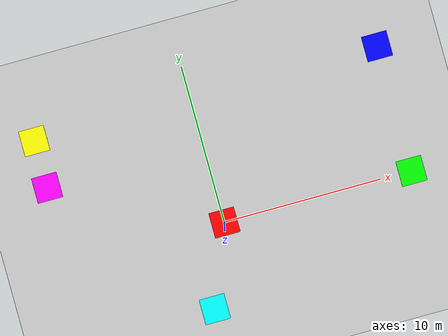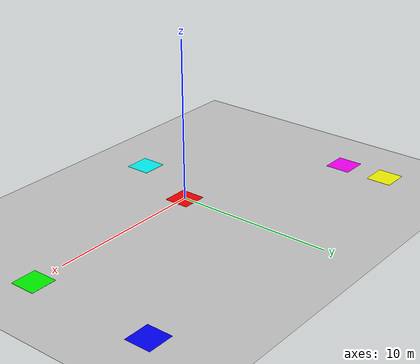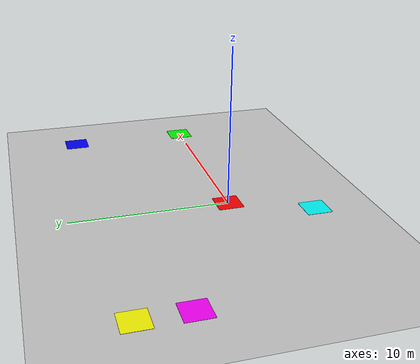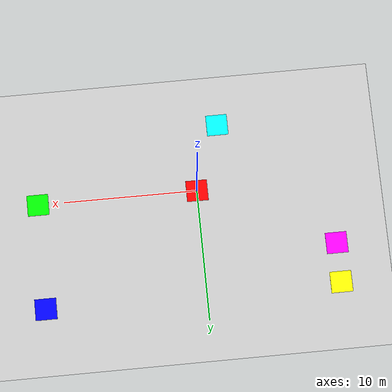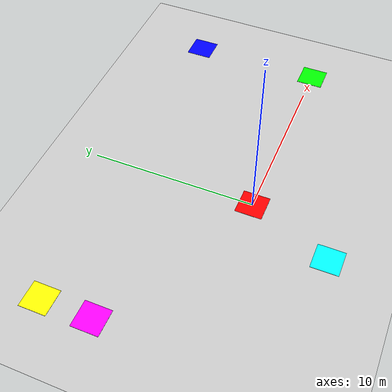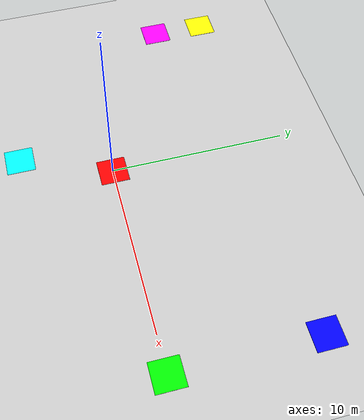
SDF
<sdf version='1.7'>
    <world name='default'>
        <plugin name='gz::sim::systems::Physics' filename='gz-sim-physics-system'/>
        <plugin name='gz::sim::systems::UserCommands' filename='gz-sim-user-commands-system'/>
        <plugin name='gz::sim::systems::SceneBroadcaster' filename='gz-sim-scene-broadcaster-system'/>

        <physics name='default_physics' type='ode'>
            <max_step_size>0.001</max_step_size>
            <real_time_factor>1</real_time_factor>
        </physics>

        <!-- Gravità -->
        <gravity>0 0 -9.8</gravity>
            <magnetic_field>6e-06 2.3e-05 -4.2e-05</magnetic_field>
        <atmosphere type='adiabatic'/>

        <light name='sun' type='directional'>
            <cast_shadows>1</cast_shadows>
            <pose>0 0 10 0 0 0</pose>
            <diffuse>0.8 0.8 0.8 1</diffuse>
            <specular>0.8 0.8 0.8 1</specular>
            <attenuation>
                <range>1000</range>
                <constant>0.9</constant>
                <linear>0.01</linear>
                <quadratic>0.001</quadratic>
            </attenuation>
            <direction>-0.5 0.1 -0.9</direction>
        </light>

        <model name='ground_plane'>
            <static>1</static>
            <link name='link'>
                <collision name='collision'>
                    <geometry>
                        <plane>
                            <normal>0 0 1</normal>
                            <size>100 100</size>
                        </plane>
                    </geometry>
                    <surface>
                        <friction>
                            <ode>
                                <mu>1.0</mu>
                                <mu2>1.0</mu2>
                            </ode>
                        </friction>
                    </surface>
                </collision>
                <visual name='visual'>
                    <geometry>
                        <plane>
                            <normal>0 0 1</normal>
                            <size>100 100</size>
                        </plane>
                    </geometry>
                    <material>
                        <ambient>0.8 0.8 0.8 1</ambient>
                        <diffuse>0.8 0.8 0.8 1</diffuse>
                        <specular>0.8 0.8 0.8 1</specular>
                    </material>
                </visual>
            </link>
        </model>

        <model name="station_a">
            <static>true</static>
            <link name="link">
                <pose>0.0 0.0 0.005 0 0 0</pose>
                <visual name="visual">
                <geometry>
                    <box>
                    <size>1.6 1.6 0.01</size>
                    </box>
                </geometry>
                <material>
                    <ambient>1 0 0 1</ambient>
                    <diffuse>1 0 0 1</diffuse>
                </material>
                </visual>
            </link>
        </model>

        <model name="station_b">
            <static>true</static>
            <link name="link">
                <pose>12.0 0.0 0.005 0 0 0</pose>
                <visual name="visual">
                <geometry>
                    <box>
                    <size>1.6 1.6 0.01</size>
                    </box>
                </geometry>
                <material>
                    <ambient>0 1 0 1</ambient>
                    <diffuse>0 1 0 1</diffuse>
                </material>
                </visual>
            </link>
        </model>

            <!-- Cerchio C -->
        <model name="station_c">
            <static>true</static>
            <link name="link">
                <pose>12.0 8.0 0.005 0 0 0</pose>
                <visual name="visual">
                <geometry>
                    <box>
                    <size>1.6 1.6 0.01</size>
                    </box>
                </geometry>
                <material>
                    <ambient>0 0 1 1</ambient>
                    <diffuse>0 0 1 1</diffuse>
                </material>
                </visual>
            </link>
        </model>

            <!-- Cerchio D -->
        <model name="station_d">
            <static>true</static>
            <link name="link">
                <pose>-10.0 8.0 0.005 0 0 0</pose>
                <visual name="visual">
                <geometry>
                    <box>
                    <size>1.6 1.6 0.01</size>
                    </box>
                </geometry>
                <material>
                    <ambient>1 1 0 1</ambient>
                    <diffuse>1 1 0 1</diffuse>
                </material>
                </visual>
            </link>
        </model>

            <!-- Cerchio E -->
        <model name="station_e">
            <static>true</static>
            <link name="link">
                <pose>-10.0 5.0 0.005 0 0 0</pose>
                <visual name="visual">
                <geometry>
                    <box>
                    <size>1.6 1.6 0.01</size>
                    </box>
                </geometry>
                <material>
                    <ambient>1 0 1 1</ambient>
                    <diffuse>1 0 1 1</diffuse>
                </material>
                </visual>
            </link>
        </model>

            <!-- Cerchio F -->
        <model name="station_f">
            <static>true</static>
            <link name="link">
                <pose>-2.0 -5.0 0.005 0 0 0</pose>
                <visual name="visual">
                <geometry>
                    <box>
                    <size>1.6 1.6 0.01</size>
                    </box>
                </geometry>
                <material>
                    <ambient>0 1 1 1</ambient>
                    <diffuse>0 1 1 1</diffuse>
                </material>
                </visual>
            </link>
        </model>

        <gui fullscreen='0'>
            <!-- 3D scene -->
            <plugin filename="MinimalScene" name="3D View">
              <gz-gui>
                <title>3D View</title>
                <property type="bool" key="showTitleBar">false</property>
                <property type="string" key="state">docked</property>
              </gz-gui>

              <engine>ogre2</engine>
              <scene>scene</scene>
              <ambient_light>0.4 0.4 0.4</ambient_light>
              <background_color>0.8 0.8 0.8</background_color>
              <camera_pose>-11 -0 20 0 1.2 0</camera_pose>
            </plugin>

            <!-- Plugins that add functionality to the scene -->
            <plugin filename="EntityContextMenuPlugin" name="Entity context menu">
              <gz-gui>
                <property key="state" type="string">floating</property>
                <property key="width" type="double">5</property>
                <property key="height" type="double">5</property>
                <property key="showTitleBar" type="bool">false</property>
              </gz-gui>
            </plugin>
            <plugin filename="GzSceneManager" name="Scene Manager">
              <gz-gui>
                <property key="resizable" type="bool">false</property>
                <property key="width" type="double">5</property>
                <property key="height" type="double">5</property>
                <property key="state" type="string">floating</property>
                <property key="showTitleBar" type="bool">false</property>
              </gz-gui>
            </plugin>
            <plugin filename="InteractiveViewControl" name="Interactive view control">
              <gz-gui>
                <property key="resizable" type="bool">false</property>
                <property key="width" type="double">5</property>
                <property key="height" type="double">5</property>
                <property key="state" type="string">floating</property>
                <property key="showTitleBar" type="bool">false</property>
              </gz-gui>
            </plugin>
            <plugin filename="CameraTracking" name="Camera Tracking">
              <gz-gui>
                <property key="resizable" type="bool">false</property>
                <property key="width" type="double">5</property>
                <property key="height" type="double">5</property>
                <property key="state" type="string">floating</property>
                <property key="showTitleBar" type="bool">false</property>
              </gz-gui>
            </plugin>
            <plugin name='World control' filename='WorldControl'>
                <gz-gui>
                    <title>World control</title>
                    <property type='bool' key='showTitleBar'>0</property>
                    <property type='bool' key='resizable'>0</property>
                    <property type='double' key='height'>72</property>
                    <property type='double' key='z'>1</property>
                    <property type='string' key='state'>floating</property>
                    <anchors target='3D View'>
                        <line own='left' target='left'/>
                        <line own='bottom' target='bottom'/>
                    </anchors>
                </gz-gui>
                <play_pause>1</play_pause>
                <step>1</step>
                <start_paused>1</start_paused>
            </plugin>
            <plugin name='World stats' filename='WorldStats'>
                <gz-gui>
                    <title>World stats</title>
                    <property type='bool' key='showTitleBar'>0</property>
                    <property type='bool' key='resizable'>0</property>
                    <property type='double' key='height'>110</property>
                    <property type='double' key='width'>290</property>
                    <property type='double' key='z'>1</property>
                    <property type='string' key='state'>floating</property>
                    <anchors target='3D View'>
                        <line own='right' target='right'/>
                        <line own='bottom' target='bottom'/>
                    </anchors>
                </gz-gui>
                <sim_time>1</sim_time>
                <real_time>1</real_time>
                <real_time_factor>1</real_time_factor>
                <iterations>1</iterations>
            </plugin>
            <plugin name='Transform control' filename='TransformControl'>
                <gz-gui>
                    <title>Transform control</title>
                    <anchors target='3D View'>
                        <line own='left' target='left'/>
                        <line own='top' target='top'/>
                    </anchors>
                    <property key='resizable' type='bool'>0</property>
                    <property key='width' type='double'>230</property>
                    <property key='height' type='double'>50</property>
                    <property key='state' type='string'>floating</property>
                    <property key='showTitleBar' type='bool'>0</property>
                    <property key='cardBackground' type='string'>#666666</property>
                </gz-gui>
            </plugin>
            <plugin name='Shapes' filename='Shapes'>
                <gz-gui>
                    <anchors target='Transform control'>
                        <line own='left' target='right'/>
                        <line own='top' target='top'/>
                    </anchors>
                    <property key='resizable' type='bool'>0</property>
                    <property key='width' type='double'>200</property>
                    <property key='height' type='double'>50</property>
                    <property key='state' type='string'>floating</property>
                    <property key='showTitleBar' type='bool'>0</property>
                    <property key='cardBackground' type='string'>#666666</property>
                </gz-gui>
            </plugin>
            <plugin filename="KeyPublisher" name="Key publisher">
                <gz-gui>
                    <anchors target="3D View">
                        <line own="right" target="right"/>
                        <line own="top" target="top"/>
                    </anchors>
                    <property key="resizable" type="bool">false</property>
                    <property key="width" type="double">5</property>
                    <property key="height" type="double">5</property>
                    <property key="state" type="string">floating</property>
                    <property key="showTitleBar" type="bool">false</property>
                </gz-gui>
            </plugin>
        </gui>
        <gravity>0 0 -9.8</gravity>
        <magnetic_field>6e-06 2.3e-05 -4.2e-05</magnetic_field>
        <atmosphere type='adiabatic'/>
    </world>
</sdf>
